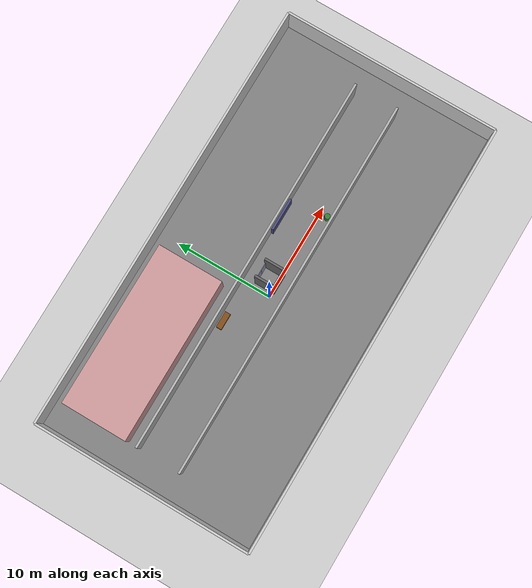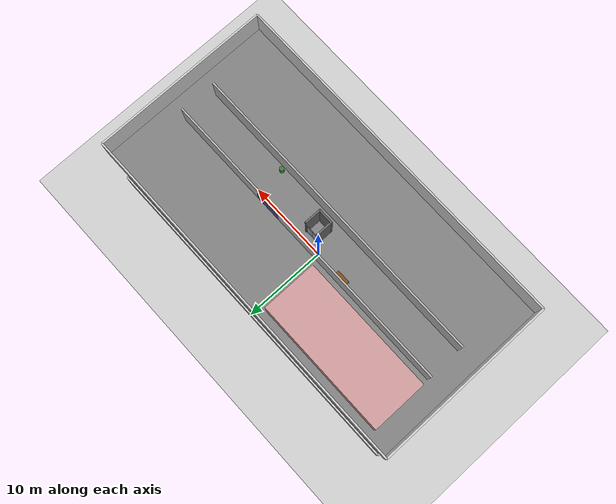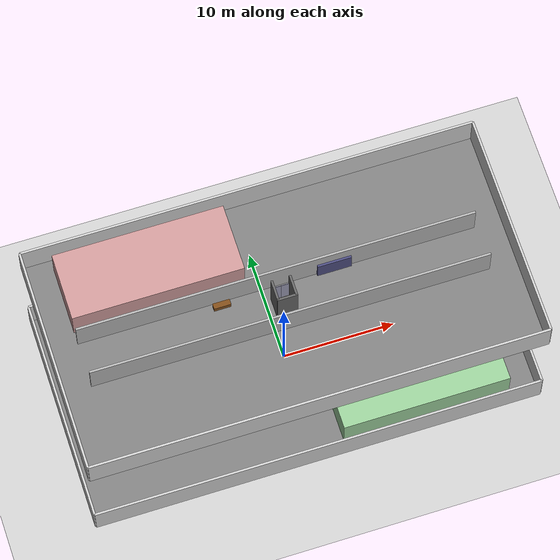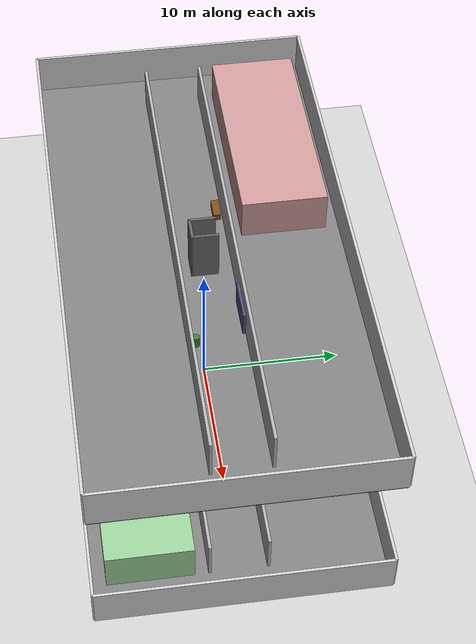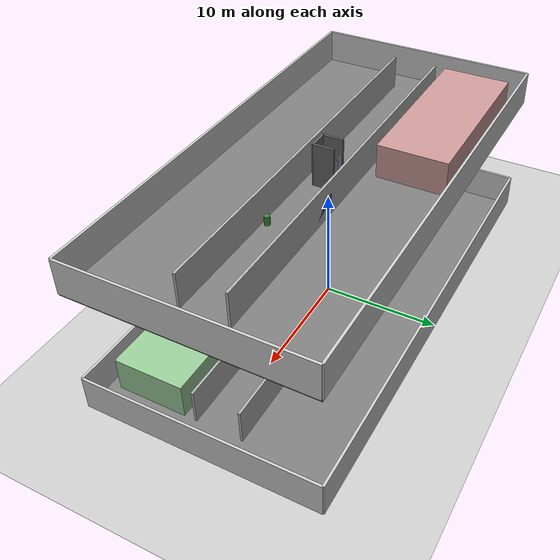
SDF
<sdf version="1.9">
 <world name="school">
  <physics name="1ms" type="ode">
   <max_step_size>0.001</max_step_size>
   <real_time_factor>1.0</real_time_factor>
  </physics>
  <scene>
   <ambient>0.4 0.4 0.4 1.0</ambient>
   <background>0.7 0.7 0.7 1.0</background>
   <shadows>true</shadows>
  </scene>
  <light name="sun" type="directional">
   <pose>0 0 10 0 0 0</pose>
   <diffuse>0.8 0.8 0.8 1.0</diffuse>
   <specular>0.2 0.2 0.2 1.0</specular>
   <attenuation>
    <range>1000</range>
    <constant>0.9</constant>
    <linear>0.01</linear>
    <quadratic>0.001</quadratic>
   </attenuation>
   <direction>-0.5 0.1 -0.9</direction>
  </light>
  <include><uri>https://fuel.gazebosim.org/1.0/Microsoft/models/ground_plane</uri></include>
  <model name="floor_1_slab">
   <pose>0 0 -0.1 0 0 0</pose>
   <static>true</static>
   <link name="link">
    <collision name="collision"><geometry><box><size>40 20 0.2</size></box></geometry></collision>
    <visual name="visual">
     <geometry><box><size>40 20 0.2</size></box></geometry>
     <material><ambient>0.5 0.5 0.5 1.0</ambient><diffuse>0.5 0.5 0.5 1.0</diffuse></material>
    </visual>
   </link>
  </model>
  <model name="floor_1_wall_north">
   <pose>0 10 1.5 0 0 0</pose>
   <static>true</static>
   <link name="link">
    <collision name="collision"><geometry><box><size>40 0.2 3.0</size></box></geometry></collision>
    <visual name="visual">
     <geometry><box><size>40 0.2 3.0</size></box></geometry>
     <material><ambient>0.8 0.8 0.8 1.0</ambient></material>
    </visual>
   </link>
  </model>
  <model name="floor_1_wall_south">
   <pose>0 -10 1.5 0 0 0</pose>
   <static>true</static>
   <link name="link">
    <collision name="collision"><geometry><box><size>40 0.2 3.0</size></box></geometry></collision>
    <visual name="visual">
     <geometry><box><size>40 0.2 3.0</size></box></geometry>
     <material><ambient>0.8 0.8 0.8 1.0</ambient></material>
    </visual>
   </link>
  </model>
  <model name="floor_1_wall_east">
   <pose>20 0 1.5 0 0 0</pose>
   <static>true</static>
   <link name="link">
    <collision name="collision"><geometry><box><size>0.2 20 3.0</size></box></geometry></collision>
    <visual name="visual">
     <geometry><box><size>0.2 20 3.0</size></box></geometry>
     <material><ambient>0.8 0.8 0.8 1.0</ambient></material>
    </visual>
   </link>
  </model>
  <model name="floor_1_wall_west">
   <pose>-20 0 1.5 0 0 0</pose>
   <static>true</static>
   <link name="link">
    <collision name="collision"><geometry><box><size>0.2 20 3.0</size></box></geometry></collision>
    <visual name="visual">
     <geometry><box><size>0.2 20 3.0</size></box></geometry>
     <material><ambient>0.8 0.8 0.8 1.0</ambient></material>
    </visual>
   </link>
  </model>
  <model name="floor_1_hallway_north">
   <pose>0 2 1.5 0 0 0</pose>
   <static>true</static>
   <link name="link">
    <collision name="collision"><geometry><box><size>35 0.2 3.0</size></box></geometry></collision>
    <visual name="visual">
     <geometry><box><size>35 0.2 3.0</size></box></geometry>
     <material><ambient>0.7 0.7 0.7 1.0</ambient></material>
    </visual>
   </link>
  </model>
  <model name="floor_1_hallway_south">
   <pose>0 -2 1.5 0 0 0</pose>
   <static>true</static>
   <link name="link">
    <collision name="collision"><geometry><box><size>35 0.2 3.0</size></box></geometry></collision>
    <visual name="visual">
     <geometry><box><size>35 0.2 3.0</size></box></geometry>
     <material><ambient>0.7 0.7 0.7 1.0</ambient></material>
    </visual>
   </link>
  </model>
  <model name="floor_1_classroom">
   <pose>10 -6 1.5 0 0 0</pose>
   <static>true</static>
   <link name="link">
    <collision name="collision"><geometry><box><size>15 6 3.0</size></box></geometry></collision>
    <visual name="visual">
     <geometry><box><size>15 6 3.0</size></box></geometry>
     <material><ambient>0.6 0.8 0.6 1.0</ambient></material>
    </visual>
   </link>
  </model>
  <model name="floor_4_slab">
   <pose>0 0 11.3 0 0 0</pose>
   <static>true</static>
   <link name="link">
    <collision name="collision"><geometry><box><size>40 20 0.2</size></box></geometry></collision>
    <visual name="visual">
     <geometry><box><size>40 20 0.2</size></box></geometry>
     <material><ambient>0.5 0.5 0.5 1.0</ambient><diffuse>0.5 0.5 0.5 1.0</diffuse></material>
    </visual>
   </link>
  </model>
  <model name="floor_4_wall_north">
   <pose>0 10 12.9 0 0 0</pose>
   <static>true</static>
   <link name="link">
    <collision name="collision"><geometry><box><size>40 0.2 3.0</size></box></geometry></collision>
    <visual name="visual">
     <geometry><box><size>40 0.2 3.0</size></box></geometry>
     <material><ambient>0.8 0.8 0.8 1.0</ambient></material>
    </visual>
   </link>
  </model>
  <model name="floor_4_wall_south">
   <pose>0 -10 12.9 0 0 0</pose>
   <static>true</static>
   <link name="link">
    <collision name="collision"><geometry><box><size>40 0.2 3.0</size></box></geometry></collision>
    <visual name="visual">
     <geometry><box><size>40 0.2 3.0</size></box></geometry>
     <material><ambient>0.8 0.8 0.8 1.0</ambient></material>
    </visual>
   </link>
  </model>
  <model name="floor_4_wall_east">
   <pose>20 0 12.9 0 0 0</pose>
   <static>true</static>
   <link name="link">
    <collision name="collision"><geometry><box><size>0.2 20 3.0</size></box></geometry></collision>
    <visual name="visual">
     <geometry><box><size>0.2 20 3.0</size></box></geometry>
     <material><ambient>0.8 0.8 0.8 1.0</ambient></material>
    </visual>
   </link>
  </model>
  <model name="floor_4_wall_west">
   <pose>-20 0 12.9 0 0 0</pose>
   <static>true</static>
   <link name="link">
    <collision name="collision"><geometry><box><size>0.2 20 3.0</size></box></geometry></collision>
    <visual name="visual">
     <geometry><box><size>0.2 20 3.0</size></box></geometry>
     <material><ambient>0.8 0.8 0.8 1.0</ambient></material>
    </visual>
   </link>
  </model>
  <model name="floor_4_hallway_north">
   <pose>0 2 12.9 0 0 0</pose>
   <static>true</static>
   <link name="link">
    <collision name="collision"><geometry><box><size>35 0.2 3.0</size></box></geometry></collision>
    <visual name="visual">
     <geometry><box><size>35 0.2 3.0</size></box></geometry>
     <material><ambient>0.7 0.7 0.7 1.0</ambient></material>
    </visual>
   </link>
  </model>
  <model name="floor_4_hallway_south">
   <pose>0 -2 12.9 0 0 0</pose>
   <static>true</static>
   <link name="link">
    <collision name="collision"><geometry><box><size>35 0.2 3.0</size></box></geometry></collision>
    <visual name="visual">
     <geometry><box><size>35 0.2 3.0</size></box></geometry>
     <material><ambient>0.7 0.7 0.7 1.0</ambient></material>
    </visual>
   </link>
  </model>
  <model name="floor_4_kitchen">
   <pose>-10 6 12.9 0 0 0</pose>
   <static>true</static>
   <link name="link">
    <collision name="collision"><geometry><box><size>15 6 3.0</size></box></geometry></collision>
    <visual name="visual">
     <geometry><box><size>15 6 3.0</size></box></geometry>
     <material><ambient>0.8 0.6 0.6 1.0</ambient></material>
    </visual>
   </link>
  </model>
  <model name="elevator_shaft_east">
   <pose>0.8 0 7.6 0 0 0</pose>
   <static>true</static>
   <link name="link">
    <collision name="collision"><geometry><box><size>0.2 1.8 15.2</size></box></geometry></collision>
    <visual name="visual">
     <geometry><box><size>0.2 1.8 15.2</size></box></geometry>
     <material><ambient>0.4 0.4 0.4 1.0</ambient></material>
    </visual>
   </link>
  </model>
  <model name="elevator_shaft_west">
   <pose>-0.8 0 7.6 0 0 0</pose>
   <static>true</static>
   <link name="link">
    <collision name="collision"><geometry><box><size>0.2 1.8 15.2</size></box></geometry></collision>
    <visual name="visual">
     <geometry><box><size>0.2 1.8 15.2</size></box></geometry>
     <material><ambient>0.4 0.4 0.4 1.0</ambient></material>
    </visual>
   </link>
  </model>
  <model name="elevator_shaft_back">
   <pose>0 -0.9 7.6 0 0 0</pose>
   <static>true</static>
   <link name="link">
    <collision name="collision"><geometry><box><size>1.8 0.2 15.2</size></box></geometry></collision>
    <visual name="visual">
     <geometry><box><size>1.8 0.2 15.2</size></box></geometry>
     <material><ambient>0.4 0.4 0.4 1.0</ambient></material>
    </visual>
   </link>
  </model>
  <model name="elevator_cab">
   <link name="cab_platform">
    <pose>0 0 0.05 0 0 0</pose>
    <inertial><mass>500.0</mass><inertia><ixx>50.0</ixx><iyy>50.0</iyy><izz>50.0</izz></inertia></inertial>
    <collision name="floor_collision"><geometry><box><size>1.4 1.4 0.1</size></box></geometry></collision>
    <visual name="floor_visual">
     <geometry><box><size>1.4 1.4 0.1</size></box></geometry>
     <material><ambient>0.3 0.3 0.3 1.0</ambient></material>
    </visual>
   </link>
   <link name="cab_anchor"><inertial><mass>1.0</mass></inertial></link>
   <joint name="elevator_joint" type="prismatic">
    <parent>cab_anchor</parent>
    <child>cab_platform</child>
    <axis>
     <xyz>0 0 1</xyz>
     <limit><lower>0.0</lower><upper>11.4</upper><velocity>1.1</velocity><effort>10000</effort></limit>
     <dynamics><damping>100.0</damping></dynamics>
    </axis>
   </joint>
   <joint name="anchor_to_world" type="fixed"><parent>world</parent><child>cab_anchor</child></joint>
  </model>
  <model name="elevator_door_f1">
   <pose>0 0.8 0 0 0 0</pose>
   <link name="door_left">
    <pose>-0.35 0 1.2 0 0 0</pose>
    <inertial><mass>30.0</mass></inertial>
    <collision name="collision"><geometry><box><size>0.7 0.05 2.4</size></box></geometry></collision>
    <visual name="visual">
     <geometry><box><size>0.7 0.05 2.4</size></box></geometry>
     <material><ambient>0.6 0.6 0.7 1.0</ambient></material>
    </visual>
   </link>
   <link name="door_right">
    <pose>0.35 0 1.2 0 0 0</pose>
    <inertial><mass>30.0</mass></inertial>
    <collision name="collision"><geometry><box><size>0.7 0.05 2.4</size></box></geometry></collision>
    <visual name="visual">
     <geometry><box><size>0.7 0.05 2.4</size></box></geometry>
     <material><ambient>0.6 0.6 0.7 1.0</ambient></material>
    </visual>
   </link>
   <link name="door_frame"><inertial><mass>1.0</mass></inertial></link>
   <joint name="door_f1_left_joint" type="prismatic">
    <parent>door_frame</parent>
    <child>door_left</child>
    <axis>
     <xyz>1 0 0</xyz>
     <limit><lower>-0.65</lower><upper>0.0</upper><velocity>0.35</velocity><effort>500</effort></limit>
    </axis>
   </joint>
   <joint name="door_f1_right_joint" type="prismatic">
    <parent>door_frame</parent>
    <child>door_right</child>
    <axis>
     <xyz>1 0 0</xyz>
     <limit><lower>0.0</lower><upper>0.65</upper><velocity>0.35</velocity><effort>500</effort></limit>
    </axis>
   </joint>
   <joint name="frame_to_world" type="fixed"><parent>world</parent><child>door_frame</child></joint>
  </model>
  <model name="elevator_door_f4">
   <pose>0 0.8 11.4 0 0 0</pose>
   <link name="door_left">
    <pose>-0.35 0 1.2 0 0 0</pose>
    <inertial><mass>30.0</mass></inertial>
    <collision name="collision"><geometry><box><size>0.7 0.05 2.4</size></box></geometry></collision>
    <visual name="visual">
     <geometry><box><size>0.7 0.05 2.4</size></box></geometry>
     <material><ambient>0.6 0.6 0.7 1.0</ambient></material>
    </visual>
   </link>
   <link name="door_right">
    <pose>0.35 0 1.2 0 0 0</pose>
    <inertial><mass>30.0</mass></inertial>
    <collision name="collision"><geometry><box><size>0.7 0.05 2.4</size></box></geometry></collision>
    <visual name="visual">
     <geometry><box><size>0.7 0.05 2.4</size></box></geometry>
     <material><ambient>0.6 0.6 0.7 1.0</ambient></material>
    </visual>
   </link>
   <link name="door_frame"><inertial><mass>1.0</mass></inertial></link>
   <joint name="door_f4_left_joint" type="prismatic">
    <parent>door_frame</parent>
    <child>door_left</child>
    <axis>
     <xyz>1 0 0</xyz>
     <limit><lower>-0.65</lower><upper>0.0</upper><velocity>0.35</velocity><effort>500</effort></limit>
    </axis>
   </joint>
   <joint name="door_f4_right_joint" type="prismatic">
    <parent>door_frame</parent>
    <child>door_right</child>
    <axis>
     <xyz>1 0 0</xyz>
     <limit><lower>0.0</lower><upper>0.65</upper><velocity>0.35</velocity><effort>500</effort></limit>
    </axis>
   </joint>
   <joint name="frame_to_world" type="fixed"><parent>world</parent><child>door_frame</child></joint>
  </model>
  <model name="bench_f1_1">
   <pose>5 1.5 0.25 0 0 0</pose>
   <static>true</static>
   <link name="link">
    <collision name="collision"><geometry><box><size>1.5 0.5 0.5</size></box></geometry></collision>
    <visual name="visual">
     <geometry><box><size>1.5 0.5 0.5</size></box></geometry>
     <material><ambient>0.5 0.3 0.1 1.0</ambient></material>
    </visual>
   </link>
  </model>
  <model name="trash_can_f1_1">
   <pose>-5 -1.5 0.4 0 0 0</pose>
   <static>true</static>
   <link name="link">
    <collision name="collision">
     <geometry><cylinder><radius>0.25</radius><length>0.8</length></cylinder></geometry>
    </collision>
    <visual name="visual">
     <geometry><cylinder><radius>0.25</radius><length>0.8</length></cylinder></geometry>
     <material><ambient>0.2 0.5 0.2 1.0</ambient></material>
    </visual>
   </link>
  </model>
  <model name="locker_f1_1">
   <pose>-8 1.9 0.9 0 0 0</pose>
   <static>true</static>
   <link name="link">
    <collision name="collision"><geometry><box><size>3.0 0.4 1.8</size></box></geometry></collision>
    <visual name="visual">
     <geometry><box><size>3.0 0.4 1.8</size></box></geometry>
     <material><ambient>0.3 0.3 0.5 1.0</ambient></material>
    </visual>
   </link>
  </model>
  <model name="pillar_f1_1">
   <pose>3 0 1.5 0 0 0</pose>
   <static>true</static>
   <link name="link">
    <collision name="collision">
     <geometry><cylinder><radius>0.2</radius><length>3.0</length></cylinder></geometry>
    </collision>
    <visual name="visual">
     <geometry><cylinder><radius>0.2</radius><length>3.0</length></cylinder></geometry>
     <material><ambient>0.7 0.7 0.7 1.0</ambient></material>
    </visual>
   </link>
  </model>
  <model name="bench_f4_1">
   <pose>-5 1.5 11.65 0 0 0</pose>
   <static>true</static>
   <link name="link">
    <collision name="collision"><geometry><box><size>1.5 0.5 0.5</size></box></geometry></collision>
    <visual name="visual">
     <geometry><box><size>1.5 0.5 0.5</size></box></geometry>
     <material><ambient>0.5 0.3 0.1 1.0</ambient></material>
    </visual>
   </link>
  </model>
  <model name="trash_can_f4_1">
   <pose>7 -1.5 11.8 0 0 0</pose>
   <static>true</static>
   <link name="link">
    <collision name="collision">
     <geometry><cylinder><radius>0.25</radius><length>0.8</length></cylinder></geometry>
    </collision>
    <visual name="visual">
     <geometry><cylinder><radius>0.25</radius><length>0.8</length></cylinder></geometry>
     <material><ambient>0.2 0.5 0.2 1.0</ambient></material>
    </visual>
   </link>
  </model>
  <model name="locker_f4_1">
   <pose>5 1.9 12.3 0 0 0</pose>
   <static>true</static>
   <link name="link">
    <collision name="collision"><geometry><box><size>3.0 0.4 1.8</size></box></geometry></collision>
    <visual name="visual">
     <geometry><box><size>3.0 0.4 1.8</size></box></geometry>
     <material><ambient>0.3 0.3 0.5 1.0</ambient></material>
    </visual>
   </link>
  </model>
  <plugin filename="gz-sim-physics-system" name="gz::sim::systems::Physics"/>
  <plugin filename="gz-sim-user-commands-system" name="gz::sim::systems::UserCommands"/>
  <plugin filename="gz-sim-scene-broadcaster-system" name="gz::sim::systems::SceneBroadcaster"/>
  <plugin filename="gz-sim-sensors-system" name="gz::sim::systems::Sensors">
   <render_engine>ogre2</render_engine>
  </plugin>
  <plugin filename="gz-sim-imu-system" name="gz::sim::systems::Imu"/>
  <plugin filename="gz-sim-contact-system" name="gz::sim::systems::Contact"/>
 </world>
</sdf>
